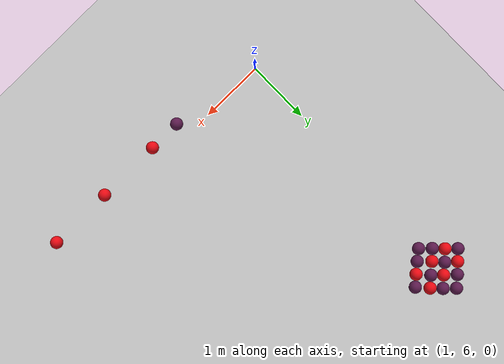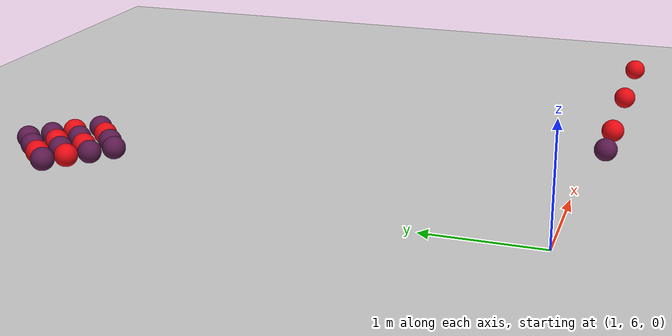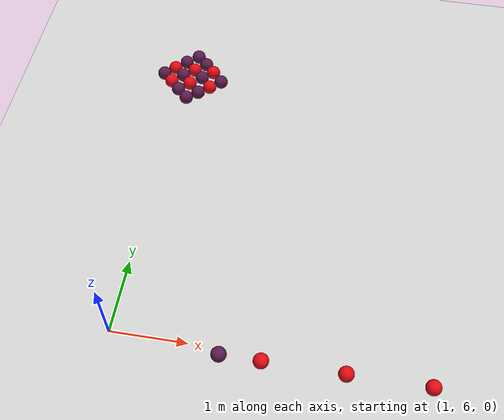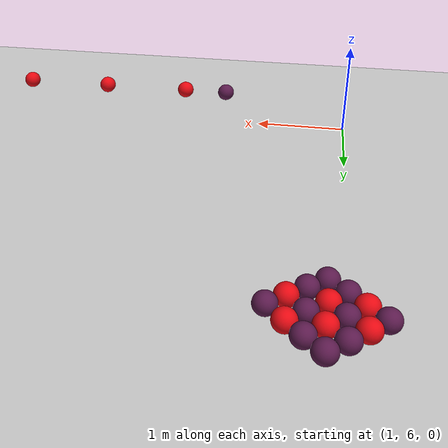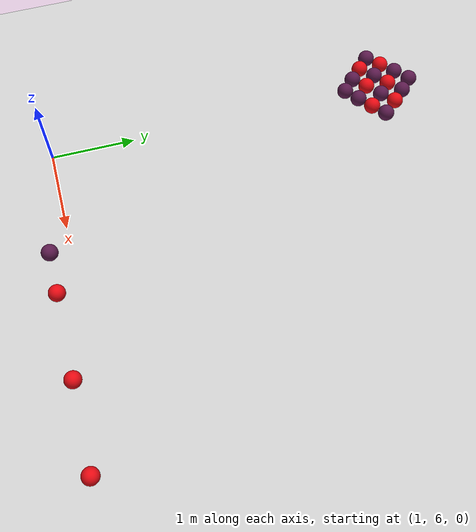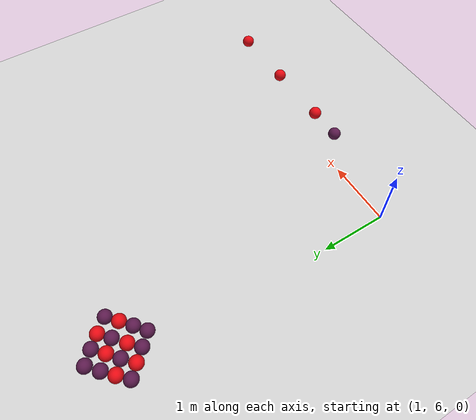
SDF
<sdf version="1.7">
 <world name="default">
  <model name="ground_plane">
   <static>1</static>
   <link name="link">
    <collision name="collision">
     <geometry><plane><normal>0 0 1</normal><size>100 100</size></plane></geometry>
     <surface>
      <contact><collide_bitmask>65535</collide_bitmask></contact>
      <friction><ode><mu>100</mu><mu2>50</mu2></ode></friction>
     </surface>
    </collision>
    <visual name="visual">
     <cast_shadows>0</cast_shadows>
     <geometry><plane><normal>0 0 1</normal><size>100 100</size></plane></geometry>
     <material>
      <script><uri>file://media/materials/scripts/gazebo.material</uri><name>Gazebo/Grey</name></script>
     </material>
    </visual>
   </link>
  </model>
  <model name="ball_empty">
   <link name="link_1">
    <inertial>
     <mass>1</mass>
     <inertia>
      <ixx>0.166667</ixx>
      <ixy>0</ixy>
      <ixz>0</ixz>
      <iyy>0.166667</iyy>
      <iyz>0</iyz>
      <izz>0.166667</izz>
     </inertia>
    </inertial>
    <visual name="visual">
     <geometry>
      <mesh>
       <uri>/home/entity014/abu2024_ws/src/abu_description/worlds/ball_empty.dae</uri>
       <scale>1 1 1</scale>
      </mesh>
     </geometry>
    </visual>
    <collision name="collision">
     <geometry>
      <mesh>
       <uri>/home/entity014/abu2024_ws/src/abu_description/worlds/ball_empty.dae</uri>
       <scale>1 1 1</scale>
      </mesh>
     </geometry>
     <surface>
      <friction>
       <ode><mu>1</mu><mu2>1</mu2><fdir1>0 0 0</fdir1><slip1>0</slip1><slip2>0</slip2></ode>
       <torsional>
        <coefficient>1</coefficient>
        <patch_radius>0</patch_radius>
        <surface_radius>0</surface_radius>
        <use_patch_radius>1</use_patch_radius>
        <ode><slip>0</slip></ode>
       </torsional>
      </friction>
      <bounce><restitution_coefficient>0</restitution_coefficient><threshold>1e+06</threshold></bounce>
      <contact>
       <collide_without_contact>0</collide_without_contact>
       <collide_without_contact_bitmask>1</collide_without_contact_bitmask>
       <collide_bitmask>1</collide_bitmask>
       <ode>
        <soft_cfm>0</soft_cfm>
        <soft_erp>0.2</soft_erp>
        <kp>1e+13</kp>
        <kd>1</kd>
        <max_vel>0.01</max_vel>
        <min_depth>0</min_depth>
       </ode>
       <bullet>
        <split_impulse>1</split_impulse>
        <split_impulse_penetration_threshold>-0.01</split_impulse_penetration_threshold>
        <soft_cfm>0</soft_cfm>
        <soft_erp>0.2</soft_erp>
        <kp>1e+13</kp>
        <kd>1</kd>
       </bullet>
      </contact>
     </surface>
    </collision>
   </link>
   <static>0</static>
   <pose>2.43209 5.79347 0.302535 0.214287 0.295041 0.006001</pose>
  </model>
  <model name="ball_red_1">
   <link name="link_1">
    <inertial>
     <mass>1</mass>
     <inertia>
      <ixx>0.166667</ixx>
      <ixy>0</ixy>
      <ixz>0</ixz>
      <iyy>0.166667</iyy>
      <iyz>0</iyz>
      <izz>0.166667</izz>
     </inertia>
    </inertial>
    <visual name="visual">
     <geometry>
      <mesh><uri>/home/entity014/abu2024_ws/src/abu_description/worlds/ball_red.dae</uri><scale>1 1 1</scale></mesh>
     </geometry>
    </visual>
    <collision name="collision">
     <geometry>
      <mesh><uri>/home/entity014/abu2024_ws/src/abu_description/worlds/ball_red.dae</uri><scale>1 1 1</scale></mesh>
     </geometry>
     <surface>
      <friction>
       <ode><mu>1</mu><mu2>1</mu2><fdir1>0 0 0</fdir1><slip1>0</slip1><slip2>0</slip2></ode>
       <torsional>
        <coefficient>1</coefficient>
        <patch_radius>0</patch_radius>
        <surface_radius>0</surface_radius>
        <use_patch_radius>1</use_patch_radius>
        <ode><slip>0</slip></ode>
       </torsional>
      </friction>
      <bounce><restitution_coefficient>0</restitution_coefficient><threshold>1e+06</threshold></bounce>
      <contact>
       <collide_without_contact>0</collide_without_contact>
       <collide_without_contact_bitmask>1</collide_without_contact_bitmask>
       <collide_bitmask>1</collide_bitmask>
       <ode>
        <soft_cfm>0</soft_cfm>
        <soft_erp>0.2</soft_erp>
        <kp>1e+13</kp>
        <kd>1</kd>
        <max_vel>0.01</max_vel>
        <min_depth>0</min_depth>
       </ode>
       <bullet>
        <split_impulse>1</split_impulse>
        <split_impulse_penetration_threshold>-0.01</split_impulse_penetration_threshold>
        <soft_cfm>0</soft_cfm>
        <soft_erp>0.2</soft_erp>
        <kp>1e+13</kp>
        <kd>1</kd>
       </bullet>
      </contact>
     </surface>
    </collision>
   </link>
   <static>0</static>
   <pose>2.9345 5.79234 0.302545 -0.06587 0.101044 -0.034635</pose>
  </model>
  <model name="ball_red_2">
   <link name="link_1">
    <inertial>
     <mass>1</mass>
     <inertia>
      <ixx>0.166667</ixx>
      <ixy>0</ixy>
      <ixz>0</ixz>
      <iyy>0.166667</iyy>
      <iyz>0</iyz>
      <izz>0.166667</izz>
     </inertia>
    </inertial>
    <visual name="visual">
     <geometry>
      <mesh><uri>/home/entity014/abu2024_ws/src/abu_description/worlds/ball_red.dae</uri><scale>1 1 1</scale></mesh>
     </geometry>
    </visual>
    <collision name="collision">
     <geometry>
      <mesh><uri>/home/entity014/abu2024_ws/src/abu_description/worlds/ball_red.dae</uri><scale>1 1 1</scale></mesh>
     </geometry>
     <surface>
      <friction>
       <ode><mu>1</mu><mu2>1</mu2><fdir1>0 0 0</fdir1><slip1>0</slip1><slip2>0</slip2></ode>
       <torsional>
        <coefficient>1</coefficient>
        <patch_radius>0</patch_radius>
        <surface_radius>0</surface_radius>
        <use_patch_radius>1</use_patch_radius>
        <ode><slip>0</slip></ode>
       </torsional>
      </friction>
      <bounce><restitution_coefficient>0</restitution_coefficient><threshold>1e+06</threshold></bounce>
      <contact>
       <collide_without_contact>0</collide_without_contact>
       <collide_without_contact_bitmask>1</collide_without_contact_bitmask>
       <collide_bitmask>1</collide_bitmask>
       <ode>
        <soft_cfm>0</soft_cfm>
        <soft_erp>0.2</soft_erp>
        <kp>1e+13</kp>
        <kd>1</kd>
        <max_vel>0.01</max_vel>
        <min_depth>0</min_depth>
       </ode>
       <bullet>
        <split_impulse>1</split_impulse>
        <split_impulse_penetration_threshold>-0.01</split_impulse_penetration_threshold>
        <soft_cfm>0</soft_cfm>
        <soft_erp>0.2</soft_erp>
        <kp>1e+13</kp>
        <kd>1</kd>
       </bullet>
      </contact>
     </surface>
    </collision>
   </link>
   <static>0</static>
   <pose>3.93279 5.79397 0.30256 -0.187112 0.059089 0.098704</pose>
  </model>
  <model name="ball_red_4">
   <link name="link_1">
    <inertial>
     <mass>1</mass>
     <inertia>
      <ixx>0.166667</ixx>
      <ixy>0</ixy>
      <ixz>0</ixz>
      <iyy>0.166667</iyy>
      <iyz>0</iyz>
      <izz>0.166667</izz>
     </inertia>
    </inertial>
    <visual name="visual">
     <geometry>
      <mesh><uri>/home/entity014/abu2024_ws/src/abu_description/worlds/ball_red.dae</uri><scale>1 1 1</scale></mesh>
     </geometry>
    </visual>
    <collision name="collision">
     <geometry>
      <mesh><uri>/home/entity014/abu2024_ws/src/abu_description/worlds/ball_red.dae</uri><scale>1 1 1</scale></mesh>
     </geometry>
     <surface>
      <friction>
       <ode><mu>1</mu><mu2>1</mu2><fdir1>0 0 0</fdir1><slip1>0</slip1><slip2>0</slip2></ode>
       <torsional>
        <coefficient>1</coefficient>
        <patch_radius>0</patch_radius>
        <surface_radius>0</surface_radius>
        <use_patch_radius>1</use_patch_radius>
        <ode><slip>0</slip></ode>
       </torsional>
      </friction>
      <bounce><restitution_coefficient>0</restitution_coefficient><threshold>1e+06</threshold></bounce>
      <contact>
       <collide_without_contact>0</collide_without_contact>
       <collide_without_contact_bitmask>1</collide_without_contact_bitmask>
       <collide_bitmask>1</collide_bitmask>
       <ode>
        <soft_cfm>0</soft_cfm>
        <soft_erp>0.2</soft_erp>
        <kp>1e+13</kp>
        <kd>1</kd>
        <max_vel>0.01</max_vel>
        <min_depth>0</min_depth>
       </ode>
       <bullet>
        <split_impulse>1</split_impulse>
        <split_impulse_penetration_threshold>-0.01</split_impulse_penetration_threshold>
        <soft_cfm>0</soft_cfm>
        <soft_erp>0.2</soft_erp>
        <kp>1e+13</kp>
        <kd>1</kd>
       </bullet>
      </contact>
     </surface>
    </collision>
   </link>
   <static>0</static>
   <pose>4.93276 5.79466 0.30311 -2.22652 0.237768 -0.634434</pose>
  </model>
  <model name="ball_red_5">
   <link name="link_1">
    <inertial>
     <mass>1</mass>
     <inertia>
      <ixx>0.166667</ixx>
      <ixy>0</ixy>
      <ixz>0</ixz>
      <iyy>0.166667</iyy>
      <iyz>0</iyz>
      <izz>0.166667</izz>
     </inertia>
    </inertial>
    <visual name="visual">
     <geometry>
      <mesh><uri>/home/entity014/abu2024_ws/src/abu_description/worlds/ball_red.dae</uri><scale>1 1 1</scale></mesh>
     </geometry>
    </visual>
    <collision name="collision">
     <geometry>
      <mesh><uri>/home/entity014/abu2024_ws/src/abu_description/worlds/ball_red.dae</uri><scale>1 1 1</scale></mesh>
     </geometry>
     <surface>
      <friction>
       <ode><mu>1</mu><mu2>1</mu2><fdir1>0 0 0</fdir1><slip1>0</slip1><slip2>0</slip2></ode>
       <torsional>
        <coefficient>1</coefficient>
        <patch_radius>0</patch_radius>
        <surface_radius>0</surface_radius>
        <use_patch_radius>1</use_patch_radius>
        <ode><slip>0</slip></ode>
       </torsional>
      </friction>
      <bounce><restitution_coefficient>0</restitution_coefficient><threshold>1e+06</threshold></bounce>
      <contact>
       <collide_without_contact>0</collide_without_contact>
       <collide_without_contact_bitmask>1</collide_without_contact_bitmask>
       <collide_bitmask>1</collide_bitmask>
       <ode>
        <soft_cfm>0</soft_cfm>
        <soft_erp>0.2</soft_erp>
        <kp>1e+13</kp>
        <kd>1</kd>
        <max_vel>0.01</max_vel>
        <min_depth>0</min_depth>
       </ode>
       <bullet>
        <split_impulse>1</split_impulse>
        <split_impulse_penetration_threshold>-0.01</split_impulse_penetration_threshold>
        <soft_cfm>0</soft_cfm>
        <soft_erp>0.2</soft_erp>
        <kp>1e+13</kp>
        <kd>1</kd>
       </bullet>
      </contact>
     </surface>
    </collision>
   </link>
   <static>0</static>
   <pose>1.18945 10.1659 0.322542 0.105937 0.053478 0.00801</pose>
  </model>
  <model name="ball_empty_0_clone_8">
   <link name="link_1">
    <inertial>
     <mass>1</mass>
     <inertia>
      <ixx>0.166667</ixx>
      <ixy>0</ixy>
      <ixz>0</ixz>
      <iyy>0.166667</iyy>
      <iyz>0</iyz>
      <izz>0.166667</izz>
     </inertia>
    </inertial>
    <visual name="visual">
     <geometry>
      <mesh>
       <uri>/home/entity014/abu2024_ws/src/abu_description/worlds/ball_empty.dae</uri>
       <scale>1 1 1</scale>
      </mesh>
     </geometry>
    </visual>
    <collision name="collision">
     <geometry>
      <mesh>
       <uri>/home/entity014/abu2024_ws/src/abu_description/worlds/ball_empty.dae</uri>
       <scale>1 1 1</scale>
      </mesh>
     </geometry>
     <surface>
      <friction>
       <ode><mu>1</mu><mu2>1</mu2><fdir1>0 0 0</fdir1><slip1>0</slip1><slip2>0</slip2></ode>
       <torsional>
        <coefficient>1</coefficient>
        <patch_radius>0</patch_radius>
        <surface_radius>0</surface_radius>
        <use_patch_radius>1</use_patch_radius>
        <ode><slip>0</slip></ode>
       </torsional>
      </friction>
      <bounce><restitution_coefficient>0</restitution_coefficient><threshold>1e+06</threshold></bounce>
      <contact>
       <collide_without_contact>0</collide_without_contact>
       <collide_without_contact_bitmask>1</collide_without_contact_bitmask>
       <collide_bitmask>1</collide_bitmask>
       <ode>
        <soft_cfm>0</soft_cfm>
        <soft_erp>0.2</soft_erp>
        <kp>1e+13</kp>
        <kd>1</kd>
        <max_vel>0.01</max_vel>
        <min_depth>0</min_depth>
       </ode>
       <bullet>
        <split_impulse>1</split_impulse>
        <split_impulse_penetration_threshold>-0.01</split_impulse_penetration_threshold>
        <soft_cfm>0</soft_cfm>
        <soft_erp>0.2</soft_erp>
        <kp>1e+13</kp>
        <kd>1</kd>
       </bullet>
      </contact>
     </surface>
    </collision>
   </link>
   <static>0</static>
   <pose>1.17868 9.62602 0.322559 0.020797 -0.036121 -0.01691</pose>
  </model>
  <model name="ball_empty_0_clone_8_clone">
   <link name="link_1">
    <inertial>
     <mass>1</mass>
     <inertia>
      <ixx>0.166667</ixx>
      <ixy>0</ixy>
      <ixz>0</ixz>
      <iyy>0.166667</iyy>
      <iyz>0</iyz>
      <izz>0.166667</izz>
     </inertia>
    </inertial>
    <visual name="visual">
     <geometry>
      <mesh>
       <uri>/home/entity014/abu2024_ws/src/abu_description/worlds/ball_empty.dae</uri>
       <scale>1 1 1</scale>
      </mesh>
     </geometry>
    </visual>
    <collision name="collision">
     <geometry>
      <mesh>
       <uri>/home/entity014/abu2024_ws/src/abu_description/worlds/ball_empty.dae</uri>
       <scale>1 1 1</scale>
      </mesh>
     </geometry>
     <surface>
      <friction>
       <ode><mu>1</mu><mu2>1</mu2><fdir1>0 0 0</fdir1><slip1>0</slip1><slip2>0</slip2></ode>
       <torsional>
        <coefficient>1</coefficient>
        <patch_radius>0</patch_radius>
        <surface_radius>0</surface_radius>
        <use_patch_radius>1</use_patch_radius>
        <ode><slip>0</slip></ode>
       </torsional>
      </friction>
      <bounce><restitution_coefficient>0</restitution_coefficient><threshold>1e+06</threshold></bounce>
      <contact>
       <collide_without_contact>0</collide_without_contact>
       <collide_without_contact_bitmask>1</collide_without_contact_bitmask>
       <collide_bitmask>1</collide_bitmask>
       <ode>
        <soft_cfm>0</soft_cfm>
        <soft_erp>0.2</soft_erp>
        <kp>1e+13</kp>
        <kd>1</kd>
        <max_vel>0.01</max_vel>
        <min_depth>0</min_depth>
       </ode>
       <bullet>
        <split_impulse>1</split_impulse>
        <split_impulse_penetration_threshold>-0.01</split_impulse_penetration_threshold>
        <soft_cfm>0</soft_cfm>
        <soft_erp>0.2</soft_erp>
        <kp>1e+13</kp>
        <kd>1</kd>
       </bullet>
      </contact>
     </surface>
    </collision>
   </link>
   <static>0</static>
   <pose>1.03287 9.76693 0.322558 -0.293891 -0.334732 -0.109921</pose>
  </model>
  <model name="ball_empty_0_clone_8_clone_0">
   <link name="link_1">
    <inertial>
     <mass>1</mass>
     <inertia>
      <ixx>0.166667</ixx>
      <ixy>0</ixy>
      <ixz>0</ixz>
      <iyy>0.166667</iyy>
      <iyz>0</iyz>
      <izz>0.166667</izz>
     </inertia>
    </inertial>
    <visual name="visual">
     <geometry>
      <mesh>
       <uri>/home/entity014/abu2024_ws/src/abu_description/worlds/ball_empty.dae</uri>
       <scale>1 1 1</scale>
      </mesh>
     </geometry>
    </visual>
    <collision name="collision">
     <geometry>
      <mesh>
       <uri>/home/entity014/abu2024_ws/src/abu_description/worlds/ball_empty.dae</uri>
       <scale>1 1 1</scale>
      </mesh>
     </geometry>
     <surface>
      <friction>
       <ode><mu>1</mu><mu2>1</mu2><fdir1>0 0 0</fdir1><slip1>0</slip1><slip2>0</slip2></ode>
       <torsional>
        <coefficient>1</coefficient>
        <patch_radius>0</patch_radius>
        <surface_radius>0</surface_radius>
        <use_patch_radius>1</use_patch_radius>
        <ode><slip>0</slip></ode>
       </torsional>
      </friction>
      <bounce><restitution_coefficient>0</restitution_coefficient><threshold>1e+06</threshold></bounce>
      <contact>
       <collide_without_contact>0</collide_without_contact>
       <collide_without_contact_bitmask>1</collide_without_contact_bitmask>
       <collide_bitmask>1</collide_bitmask>
       <ode>
        <soft_cfm>0</soft_cfm>
        <soft_erp>0.2</soft_erp>
        <kp>1e+13</kp>
        <kd>1</kd>
        <max_vel>0.01</max_vel>
        <min_depth>0</min_depth>
       </ode>
       <bullet>
        <split_impulse>1</split_impulse>
        <split_impulse_penetration_threshold>-0.01</split_impulse_penetration_threshold>
        <soft_cfm>0</soft_cfm>
        <soft_erp>0.2</soft_erp>
        <kp>1e+13</kp>
        <kd>1</kd>
       </bullet>
      </contact>
     </surface>
    </collision>
   </link>
   <static>0</static>
   <pose>1.32617 9.74652 0.322605 0.288834 0.310638 -0.388565</pose>
  </model>
  <model name="ball_empty_0_clone_8_clone_1">
   <link name="link_1">
    <inertial>
     <mass>1</mass>
     <inertia>
      <ixx>0.166667</ixx>
      <ixy>0</ixy>
      <ixz>0</ixz>
      <iyy>0.166667</iyy>
      <iyz>0</iyz>
      <izz>0.166667</izz>
     </inertia>
    </inertial>
    <visual name="visual">
     <geometry>
      <mesh>
       <uri>/home/entity014/abu2024_ws/src/abu_description/worlds/ball_empty.dae</uri>
       <scale>1 1 1</scale>
      </mesh>
     </geometry>
    </visual>
    <collision name="collision">
     <geometry>
      <mesh>
       <uri>/home/entity014/abu2024_ws/src/abu_description/worlds/ball_empty.dae</uri>
       <scale>1 1 1</scale>
      </mesh>
     </geometry>
     <surface>
      <friction>
       <ode><mu>1</mu><mu2>1</mu2><fdir1>0 0 0</fdir1><slip1>0</slip1><slip2>0</slip2></ode>
       <torsional>
        <coefficient>1</coefficient>
        <patch_radius>0</patch_radius>
        <surface_radius>0</surface_radius>
        <use_patch_radius>1</use_patch_radius>
        <ode><slip>0</slip></ode>
       </torsional>
      </friction>
      <bounce><restitution_coefficient>0</restitution_coefficient><threshold>1e+06</threshold></bounce>
      <contact>
       <collide_without_contact>0</collide_without_contact>
       <collide_without_contact_bitmask>1</collide_without_contact_bitmask>
       <collide_bitmask>1</collide_bitmask>
       <ode>
        <soft_cfm>0</soft_cfm>
        <soft_erp>0.2</soft_erp>
        <kp>1e+13</kp>
        <kd>1</kd>
        <max_vel>0.01</max_vel>
        <min_depth>0</min_depth>
       </ode>
       <bullet>
        <split_impulse>1</split_impulse>
        <split_impulse_penetration_threshold>-0.01</split_impulse_penetration_threshold>
        <soft_cfm>0</soft_cfm>
        <soft_erp>0.2</soft_erp>
        <kp>1e+13</kp>
        <kd>1</kd>
       </bullet>
      </contact>
     </surface>
    </collision>
   </link>
   <static>0</static>
   <pose>1.6141 9.99825 0.322567 1.18741 0.429712 0.282943</pose>
  </model>
  <model name="ball_empty_0_clone_8_clone_2">
   <link name="link_1">
    <inertial>
     <mass>1</mass>
     <inertia>
      <ixx>0.166667</ixx>
      <ixy>0</ixy>
      <ixz>0</ixz>
      <iyy>0.166667</iyy>
      <iyz>0</iyz>
      <izz>0.166667</izz>
     </inertia>
    </inertial>
    <visual name="visual">
     <geometry>
      <mesh>
       <uri>/home/entity014/abu2024_ws/src/abu_description/worlds/ball_empty.dae</uri>
       <scale>1 1 1</scale>
      </mesh>
     </geometry>
    </visual>
    <collision name="collision">
     <geometry>
      <mesh>
       <uri>/home/entity014/abu2024_ws/src/abu_description/worlds/ball_empty.dae</uri>
       <scale>1 1 1</scale>
      </mesh>
     </geometry>
     <surface>
      <friction>
       <ode><mu>1</mu><mu2>1</mu2><fdir1>0 0 0</fdir1><slip1>0</slip1><slip2>0</slip2></ode>
       <torsional>
        <coefficient>1</coefficient>
        <patch_radius>0</patch_radius>
        <surface_radius>0</surface_radius>
        <use_patch_radius>1</use_patch_radius>
        <ode><slip>0</slip></ode>
       </torsional>
      </friction>
      <bounce><restitution_coefficient>0</restitution_coefficient><threshold>1e+06</threshold></bounce>
      <contact>
       <collide_without_contact>0</collide_without_contact>
       <collide_without_contact_bitmask>1</collide_without_contact_bitmask>
       <collide_bitmask>1</collide_bitmask>
       <ode>
        <soft_cfm>0</soft_cfm>
        <soft_erp>0.2</soft_erp>
        <kp>1e+13</kp>
        <kd>1</kd>
        <max_vel>0.01</max_vel>
        <min_depth>0</min_depth>
       </ode>
       <bullet>
        <split_impulse>1</split_impulse>
        <split_impulse_penetration_threshold>-0.01</split_impulse_penetration_threshold>
        <soft_cfm>0</soft_cfm>
        <soft_erp>0.2</soft_erp>
        <kp>1e+13</kp>
        <kd>1</kd>
       </bullet>
      </contact>
     </surface>
    </collision>
   </link>
   <static>0</static>
   <pose>1.32605 10.034 0.322556 0.041591 0.003773 -0.006567</pose>
  </model>
  <model name="ball_empty_0_clone_8_clone_3">
   <link name="link_1">
    <inertial>
     <mass>1</mass>
     <inertia>
      <ixx>0.166667</ixx>
      <ixy>0</ixy>
      <ixz>0</ixz>
      <iyy>0.166667</iyy>
      <iyz>0</iyz>
      <izz>0.166667</izz>
     </inertia>
    </inertial>
    <visual name="visual">
     <geometry>
      <mesh>
       <uri>/home/entity014/abu2024_ws/src/abu_description/worlds/ball_empty.dae</uri>
       <scale>1 1 1</scale>
      </mesh>
     </geometry>
    </visual>
    <collision name="collision">
     <geometry>
      <mesh>
       <uri>/home/entity014/abu2024_ws/src/abu_description/worlds/ball_empty.dae</uri>
       <scale>1 1 1</scale>
      </mesh>
     </geometry>
     <surface>
      <friction>
       <ode><mu>1</mu><mu2>1</mu2><fdir1>0 0 0</fdir1><slip1>0</slip1><slip2>0</slip2></ode>
       <torsional>
        <coefficient>1</coefficient>
        <patch_radius>0</patch_radius>
        <surface_radius>0</surface_radius>
        <use_patch_radius>1</use_patch_radius>
        <ode><slip>0</slip></ode>
       </torsional>
      </friction>
      <bounce><restitution_coefficient>0</restitution_coefficient><threshold>1e+06</threshold></bounce>
      <contact>
       <collide_without_contact>0</collide_without_contact>
       <collide_without_contact_bitmask>1</collide_without_contact_bitmask>
       <collide_bitmask>1</collide_bitmask>
       <ode>
        <soft_cfm>0</soft_cfm>
        <soft_erp>0.2</soft_erp>
        <kp>1e+13</kp>
        <kd>1</kd>
        <max_vel>0.01</max_vel>
        <min_depth>0</min_depth>
       </ode>
       <bullet>
        <split_impulse>1</split_impulse>
        <split_impulse_penetration_threshold>-0.01</split_impulse_penetration_threshold>
        <soft_cfm>0</soft_cfm>
        <soft_erp>0.2</soft_erp>
        <kp>1e+13</kp>
        <kd>1</kd>
       </bullet>
      </contact>
     </surface>
    </collision>
   </link>
   <static>0</static>
   <pose>1.0443 10.0423 0.322544 0.037546 -0.014642 -0.068238</pose>
  </model>
  <model name="ball_empty_0_clone_8_clone_4">
   <link name="link_1">
    <inertial>
     <mass>1</mass>
     <inertia>
      <ixx>0.166667</ixx>
      <ixy>0</ixy>
      <ixz>0</ixz>
      <iyy>0.166667</iyy>
      <iyz>0</iyz>
      <izz>0.166667</izz>
     </inertia>
    </inertial>
    <visual name="visual">
     <geometry>
      <mesh>
       <uri>/home/entity014/abu2024_ws/src/abu_description/worlds/ball_empty.dae</uri>
       <scale>1 1 1</scale>
      </mesh>
     </geometry>
    </visual>
    <collision name="collision">
     <geometry>
      <mesh>
       <uri>/home/entity014/abu2024_ws/src/abu_description/worlds/ball_empty.dae</uri>
       <scale>1 1 1</scale>
      </mesh>
     </geometry>
     <surface>
      <friction>
       <ode><mu>1</mu><mu2>1</mu2><fdir1>0 0 0</fdir1><slip1>0</slip1><slip2>0</slip2></ode>
       <torsional>
        <coefficient>1</coefficient>
        <patch_radius>0</patch_radius>
        <surface_radius>0</surface_radius>
        <use_patch_radius>1</use_patch_radius>
        <ode><slip>0</slip></ode>
       </torsional>
      </friction>
      <bounce><restitution_coefficient>0</restitution_coefficient><threshold>1e+06</threshold></bounce>
      <contact>
       <collide_without_contact>0</collide_without_contact>
       <collide_without_contact_bitmask>1</collide_without_contact_bitmask>
       <collide_bitmask>1</collide_bitmask>
       <ode>
        <soft_cfm>0</soft_cfm>
        <soft_erp>0.2</soft_erp>
        <kp>1e+13</kp>
        <kd>1</kd>
        <max_vel>0.01</max_vel>
        <min_depth>0</min_depth>
       </ode>
       <bullet>
        <split_impulse>1</split_impulse>
        <split_impulse_penetration_threshold>-0.01</split_impulse_penetration_threshold>
        <soft_cfm>0</soft_cfm>
        <soft_erp>0.2</soft_erp>
        <kp>1e+13</kp>
        <kd>1</kd>
       </bullet>
      </contact>
     </surface>
    </collision>
   </link>
   <static>0</static>
   <pose>0.764663 10.0355 0.322599 0.025369 -0.04847 0.075376</pose>
  </model>
  <model name="ball_empty_0_clone_8_clone_5">
   <link name="link_1">
    <inertial>
     <mass>1</mass>
     <inertia>
      <ixx>0.166667</ixx>
      <ixy>0</ixy>
      <ixz>0</ixz>
      <iyy>0.166667</iyy>
      <iyz>0</iyz>
      <izz>0.166667</izz>
     </inertia>
    </inertial>
    <visual name="visual">
     <geometry>
      <mesh>
       <uri>/home/entity014/abu2024_ws/src/abu_description/worlds/ball_empty.dae</uri>
       <scale>1 1 1</scale>
      </mesh>
     </geometry>
    </visual>
    <collision name="collision">
     <geometry>
      <mesh>
       <uri>/home/entity014/abu2024_ws/src/abu_description/worlds/ball_empty.dae</uri>
       <scale>1 1 1</scale>
      </mesh>
     </geometry>
     <surface>
      <friction>
       <ode><mu>1</mu><mu2>1</mu2><fdir1>0 0 0</fdir1><slip1>0</slip1><slip2>0</slip2></ode>
       <torsional>
        <coefficient>1</coefficient>
        <patch_radius>0</patch_radius>
        <surface_radius>0</surface_radius>
        <use_patch_radius>1</use_patch_radius>
        <ode><slip>0</slip></ode>
       </torsional>
      </friction>
      <bounce><restitution_coefficient>0</restitution_coefficient><threshold>1e+06</threshold></bounce>
      <contact>
       <collide_without_contact>0</collide_without_contact>
       <collide_without_contact_bitmask>1</collide_without_contact_bitmask>
       <collide_bitmask>1</collide_bitmask>
       <ode>
        <soft_cfm>0</soft_cfm>
        <soft_erp>0.2</soft_erp>
        <kp>1e+13</kp>
        <kd>1</kd>
        <max_vel>0.01</max_vel>
        <min_depth>0</min_depth>
       </ode>
       <bullet>
        <split_impulse>1</split_impulse>
        <split_impulse_penetration_threshold>-0.01</split_impulse_penetration_threshold>
        <soft_cfm>0</soft_cfm>
        <soft_erp>0.2</soft_erp>
        <kp>1e+13</kp>
        <kd>1</kd>
       </bullet>
      </contact>
     </surface>
    </collision>
   </link>
   <static>0</static>
   <pose>1.19146 10.4381 0.322544 0.039899 -0.004432 -5.5e-05</pose>
  </model>
  <model name="ball_empty_0_clone_8_clone_6">
   <link name="link_1">
    <inertial>
     <mass>1</mass>
     <inertia>
      <ixx>0.166667</ixx>
      <ixy>0</ixy>
      <ixz>0</ixz>
      <iyy>0.166667</iyy>
      <iyz>0</iyz>
      <izz>0.166667</izz>
     </inertia>
    </inertial>
    <visual name="visual">
     <geometry>
      <mesh>
       <uri>/home/entity014/abu2024_ws/src/abu_description/worlds/ball_empty.dae</uri>
       <scale>1 1 1</scale>
      </mesh>
     </geometry>
    </visual>
    <collision name="collision">
     <geometry>
      <mesh>
       <uri>/home/entity014/abu2024_ws/src/abu_description/worlds/ball_empty.dae</uri>
       <scale>1 1 1</scale>
      </mesh>
     </geometry>
     <surface>
      <friction>
       <ode><mu>1</mu><mu2>1</mu2><fdir1>0 0 0</fdir1><slip1>0</slip1><slip2>0</slip2></ode>
       <torsional>
        <coefficient>1</coefficient>
        <patch_radius>0</patch_radius>
        <surface_radius>0</surface_radius>
        <use_patch_radius>1</use_patch_radius>
        <ode><slip>0</slip></ode>
       </torsional>
      </friction>
      <bounce><restitution_coefficient>0</restitution_coefficient><threshold>1e+06</threshold></bounce>
      <contact>
       <collide_without_contact>0</collide_without_contact>
       <collide_without_contact_bitmask>1</collide_without_contact_bitmask>
       <collide_bitmask>1</collide_bitmask>
       <ode>
        <soft_cfm>0</soft_cfm>
        <soft_erp>0.2</soft_erp>
        <kp>1e+13</kp>
        <kd>1</kd>
        <max_vel>0.01</max_vel>
        <min_depth>0</min_depth>
       </ode>
       <bullet>
        <split_impulse>1</split_impulse>
        <split_impulse_penetration_threshold>-0.01</split_impulse_penetration_threshold>
        <soft_cfm>0</soft_cfm>
        <soft_erp>0.2</soft_erp>
        <kp>1e+13</kp>
        <kd>1</kd>
       </bullet>
      </contact>
     </surface>
    </collision>
   </link>
   <static>0</static>
   <pose>1.04035 10.3029 0.322545 0.036002 -0.018577 0.001799</pose>
  </model>
  <model name="ball_empty_0_clone_8_clone_7">
   <link name="link_1">
    <inertial>
     <mass>1</mass>
     <inertia>
      <ixx>0.166667</ixx>
      <ixy>0</ixy>
      <ixz>0</ixz>
      <iyy>0.166667</iyy>
      <iyz>0</iyz>
      <izz>0.166667</izz>
     </inertia>
    </inertial>
    <visual name="visual">
     <geometry>
      <mesh>
       <uri>/home/entity014/abu2024_ws/src/abu_description/worlds/ball_empty.dae</uri>
       <scale>1 1 1</scale>
      </mesh>
     </geometry>
    </visual>
    <collision name="collision">
     <geometry>
      <mesh>
       <uri>/home/entity014/abu2024_ws/src/abu_description/worlds/ball_empty.dae</uri>
       <scale>1 1 1</scale>
      </mesh>
     </geometry>
     <surface>
      <friction>
       <ode><mu>1</mu><mu2>1</mu2><fdir1>0 0 0</fdir1><slip1>0</slip1><slip2>0</slip2></ode>
       <torsional>
        <coefficient>1</coefficient>
        <patch_radius>0</patch_radius>
        <surface_radius>0</surface_radius>
        <use_patch_radius>1</use_patch_radius>
        <ode><slip>0</slip></ode>
       </torsional>
      </friction>
      <bounce><restitution_coefficient>0</restitution_coefficient><threshold>1e+06</threshold></bounce>
      <contact>
       <collide_without_contact>0</collide_without_contact>
       <collide_without_contact_bitmask>1</collide_without_contact_bitmask>
       <collide_bitmask>1</collide_bitmask>
       <ode>
        <soft_cfm>0</soft_cfm>
        <soft_erp>0.2</soft_erp>
        <kp>1e+13</kp>
        <kd>1</kd>
        <max_vel>0.01</max_vel>
        <min_depth>0</min_depth>
       </ode>
       <bullet>
        <split_impulse>1</split_impulse>
        <split_impulse_penetration_threshold>-0.01</split_impulse_penetration_threshold>
        <soft_cfm>0</soft_cfm>
        <soft_erp>0.2</soft_erp>
        <kp>1e+13</kp>
        <kd>1</kd>
       </bullet>
      </contact>
     </surface>
    </collision>
   </link>
   <static>0</static>
   <pose>1.33566 10.3007 0.322535 0.040268 -0.004396 0.000862</pose>
  </model>
  <model name="ball_red_5_clone">
   <link name="link_1">
    <inertial>
     <mass>1</mass>
     <inertia>
      <ixx>0.166667</ixx>
      <ixy>0</ixy>
      <ixz>0</ixz>
      <iyy>0.166667</iyy>
      <iyz>0</iyz>
      <izz>0.166667</izz>
     </inertia>
    </inertial>
    <visual name="visual">
     <geometry>
      <mesh><uri>/home/entity014/abu2024_ws/src/abu_description/worlds/ball_red.dae</uri><scale>1 1 1</scale></mesh>
     </geometry>
    </visual>
    <collision name="collision">
     <geometry>
      <mesh><uri>/home/entity014/abu2024_ws/src/abu_description/worlds/ball_red.dae</uri><scale>1 1 1</scale></mesh>
     </geometry>
     <surface>
      <friction>
       <ode><mu>1</mu><mu2>1</mu2><fdir1>0 0 0</fdir1><slip1>0</slip1><slip2>0</slip2></ode>
       <torsional>
        <coefficient>1</coefficient>
        <patch_radius>0</patch_radius>
        <surface_radius>0</surface_radius>
        <use_patch_radius>1</use_patch_radius>
        <ode><slip>0</slip></ode>
       </torsional>
      </friction>
      <bounce><restitution_coefficient>0</restitution_coefficient><threshold>1e+06</threshold></bounce>
      <contact>
       <collide_without_contact>0</collide_without_contact>
       <collide_without_contact_bitmask>1</collide_without_contact_bitmask>
       <collide_bitmask>1</collide_bitmask>
       <ode>
        <soft_cfm>0</soft_cfm>
        <soft_erp>0.2</soft_erp>
        <kp>1e+13</kp>
        <kd>1</kd>
        <max_vel>0.01</max_vel>
        <min_depth>0</min_depth>
       </ode>
       <bullet>
        <split_impulse>1</split_impulse>
        <split_impulse_penetration_threshold>-0.01</split_impulse_penetration_threshold>
        <soft_cfm>0</soft_cfm>
        <soft_erp>0.2</soft_erp>
        <kp>1e+13</kp>
        <kd>1</kd>
       </bullet>
      </contact>
     </surface>
    </collision>
   </link>
   <static>0</static>
   <pose>1.17117 9.89984 0.322581 0.022202 -0.130796 -0.11082</pose>
  </model>
  <model name="ball_red_5_clone_0">
   <link name="link_1">
    <inertial>
     <mass>1</mass>
     <inertia>
      <ixx>0.166667</ixx>
      <ixy>0</ixy>
      <ixz>0</ixz>
      <iyy>0.166667</iyy>
      <iyz>0</iyz>
      <izz>0.166667</izz>
     </inertia>
    </inertial>
    <visual name="visual">
     <geometry>
      <mesh><uri>/home/entity014/abu2024_ws/src/abu_description/worlds/ball_red.dae</uri><scale>1 1 1</scale></mesh>
     </geometry>
    </visual>
    <collision name="collision">
     <geometry>
      <mesh><uri>/home/entity014/abu2024_ws/src/abu_description/worlds/ball_red.dae</uri><scale>1 1 1</scale></mesh>
     </geometry>
     <surface>
      <friction>
       <ode><mu>1</mu><mu2>1</mu2><fdir1>0 0 0</fdir1><slip1>0</slip1><slip2>0</slip2></ode>
       <torsional>
        <coefficient>1</coefficient>
        <patch_radius>0</patch_radius>
        <surface_radius>0</surface_radius>
        <use_patch_radius>1</use_patch_radius>
        <ode><slip>0</slip></ode>
       </torsional>
      </friction>
      <bounce><restitution_coefficient>0</restitution_coefficient><threshold>1e+06</threshold></bounce>
      <contact>
       <collide_without_contact>0</collide_without_contact>
       <collide_without_contact_bitmask>1</collide_without_contact_bitmask>
       <collide_bitmask>1</collide_bitmask>
       <ode>
        <soft_cfm>0</soft_cfm>
        <soft_erp>0.2</soft_erp>
        <kp>1e+13</kp>
        <kd>1</kd>
        <max_vel>0.01</max_vel>
        <min_depth>0</min_depth>
       </ode>
       <bullet>
        <split_impulse>1</split_impulse>
        <split_impulse_penetration_threshold>-0.01</split_impulse_penetration_threshold>
        <soft_cfm>0</soft_cfm>
        <soft_erp>0.2</soft_erp>
        <kp>1e+13</kp>
        <kd>1</kd>
       </bullet>
      </contact>
     </surface>
    </collision>
   </link>
   <static>0</static>
   <pose>0.900555 10.1681 0.322603 0.217128 -0.142246 -0.015268</pose>
  </model>
  <model name="ball_red_5_clone_1">
   <link name="link_1">
    <inertial>
     <mass>1</mass>
     <inertia>
      <ixx>0.166667</ixx>
      <ixy>0</ixy>
      <ixz>0</ixz>
      <iyy>0.166667</iyy>
      <iyz>0</iyz>
      <izz>0.166667</izz>
     </inertia>
    </inertial>
    <visual name="visual">
     <geometry>
      <mesh><uri>/home/entity014/abu2024_ws/src/abu_description/worlds/ball_red.dae</uri><scale>1 1 1</scale></mesh>
     </geometry>
    </visual>
    <collision name="collision">
     <geometry>
      <mesh><uri>/home/entity014/abu2024_ws/src/abu_description/worlds/ball_red.dae</uri><scale>1 1 1</scale></mesh>
     </geometry>
     <surface>
      <friction>
       <ode><mu>1</mu><mu2>1</mu2><fdir1>0 0 0</fdir1><slip1>0</slip1><slip2>0</slip2></ode>
       <torsional>
        <coefficient>1</coefficient>
        <patch_radius>0</patch_radius>
        <surface_radius>0</surface_radius>
        <use_patch_radius>1</use_patch_radius>
        <ode><slip>0</slip></ode>
       </torsional>
      </friction>
      <bounce><restitution_coefficient>0</restitution_coefficient><threshold>1e+06</threshold></bounce>
      <contact>
       <collide_without_contact>0</collide_without_contact>
       <collide_without_contact_bitmask>1</collide_without_contact_bitmask>
       <collide_bitmask>1</collide_bitmask>
       <ode>
        <soft_cfm>0</soft_cfm>
        <soft_erp>0.2</soft_erp>
        <kp>1e+13</kp>
        <kd>1</kd>
        <max_vel>0.01</max_vel>
        <min_depth>0</min_depth>
       </ode>
       <bullet>
        <split_impulse>1</split_impulse>
        <split_impulse_penetration_threshold>-0.01</split_impulse_penetration_threshold>
        <soft_cfm>0</soft_cfm>
        <soft_erp>0.2</soft_erp>
        <kp>1e+13</kp>
        <kd>1</kd>
       </bullet>
      </contact>
     </surface>
    </collision>
   </link>
   <static>0</static>
   <pose>0.901691 9.90417 0.322633 -0.296741 -0.152166 0.055484</pose>
  </model>
  <model name="ball_red_5_clone_2">
   <link name="link_1">
    <inertial>
     <mass>1</mass>
     <inertia>
      <ixx>0.166667</ixx>
      <ixy>0</ixy>
      <ixz>0</ixz>
      <iyy>0.166667</iyy>
      <iyz>0</iyz>
      <izz>0.166667</izz>
     </inertia>
    </inertial>
    <visual name="visual">
     <geometry>
      <mesh><uri>/home/entity014/abu2024_ws/src/abu_description/worlds/ball_red.dae</uri><scale>1 1 1</scale></mesh>
     </geometry>
    </visual>
    <collision name="collision">
     <geometry>
      <mesh><uri>/home/entity014/abu2024_ws/src/abu_description/worlds/ball_red.dae</uri><scale>1 1 1</scale></mesh>
     </geometry>
     <surface>
      <friction>
       <ode><mu>1</mu><mu2>1</mu2><fdir1>0 0 0</fdir1><slip1>0</slip1><slip2>0</slip2></ode>
       <torsional>
        <coefficient>1</coefficient>
        <patch_radius>0</patch_radius>
        <surface_radius>0</surface_radius>
        <use_patch_radius>1</use_patch_radius>
        <ode><slip>0</slip></ode>
       </torsional>
      </friction>
      <bounce><restitution_coefficient>0</restitution_coefficient><threshold>1e+06</threshold></bounce>
      <contact>
       <collide_without_contact>0</collide_without_contact>
       <collide_without_contact_bitmask>1</collide_without_contact_bitmask>
       <collide_bitmask>1</collide_bitmask>
       <ode>
        <soft_cfm>0</soft_cfm>
        <soft_erp>0.2</soft_erp>
        <kp>1e+13</kp>
        <kd>1</kd>
        <max_vel>0.01</max_vel>
        <min_depth>0</min_depth>
       </ode>
       <bullet>
        <split_impulse>1</split_impulse>
        <split_impulse_penetration_threshold>-0.01</split_impulse_penetration_threshold>
        <soft_cfm>0</soft_cfm>
        <soft_erp>0.2</soft_erp>
        <kp>1e+13</kp>
        <kd>1</kd>
       </bullet>
      </contact>
     </surface>
    </collision>
   </link>
   <static>0</static>
   <pose>1.47124 9.87097 0.322583 1.07843 0.67005 0.004064</pose>
  </model>
  <model name="ball_red_5_clone_3">
   <link name="link_1">
    <inertial>
     <mass>1</mass>
     <inertia>
      <ixx>0.166667</ixx>
      <ixy>0</ixy>
      <ixz>0</ixz>
      <iyy>0.166667</iyy>
      <iyz>0</iyz>
      <izz>0.166667</izz>
     </inertia>
    </inertial>
    <visual name="visual">
     <geometry>
      <mesh><uri>/home/entity014/abu2024_ws/src/abu_description/worlds/ball_red.dae</uri><scale>1 1 1</scale></mesh>
     </geometry>
    </visual>
    <collision name="collision">
     <geometry>
      <mesh><uri>/home/entity014/abu2024_ws/src/abu_description/worlds/ball_red.dae</uri><scale>1 1 1</scale></mesh>
     </geometry>
     <surface>
      <friction>
       <ode><mu>1</mu><mu2>1</mu2><fdir1>0 0 0</fdir1><slip1>0</slip1><slip2>0</slip2></ode>
       <torsional>
        <coefficient>1</coefficient>
        <patch_radius>0</patch_radius>
        <surface_radius>0</surface_radius>
        <use_patch_radius>1</use_patch_radius>
        <ode><slip>0</slip></ode>
       </torsional>
      </friction>
      <bounce><restitution_coefficient>0</restitution_coefficient><threshold>1e+06</threshold></bounce>
      <contact>
       <collide_without_contact>0</collide_without_contact>
       <collide_without_contact_bitmask>1</collide_without_contact_bitmask>
       <collide_bitmask>1</collide_bitmask>
       <ode>
        <soft_cfm>0</soft_cfm>
        <soft_erp>0.2</soft_erp>
        <kp>1e+13</kp>
        <kd>1</kd>
        <max_vel>0.01</max_vel>
        <min_depth>0</min_depth>
       </ode>
       <bullet>
        <split_impulse>1</split_impulse>
        <split_impulse_penetration_threshold>-0.01</split_impulse_penetration_threshold>
        <soft_cfm>0</soft_cfm>
        <soft_erp>0.2</soft_erp>
        <kp>1e+13</kp>
        <kd>1</kd>
       </bullet>
      </contact>
     </surface>
    </collision>
   </link>
   <static>0</static>
   <pose>1.46746 10.1628 0.322568 0.111547 0.02345 -0.027594</pose>
  </model>
 </world>
</sdf>
